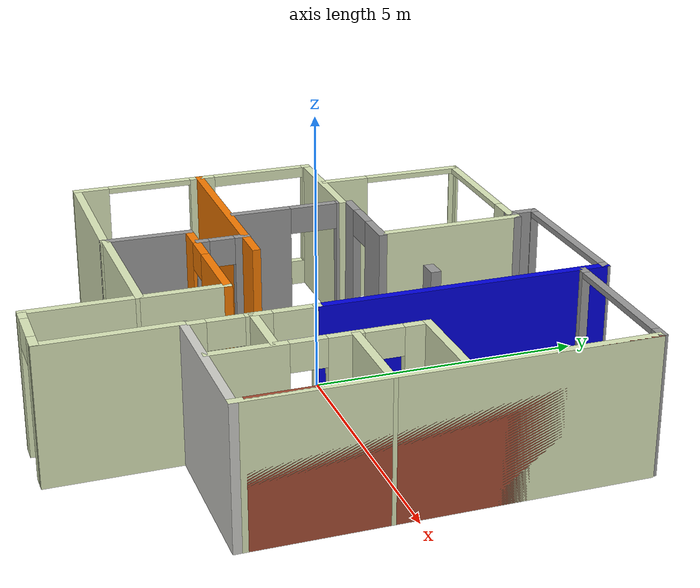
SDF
<?xml version='1.0'?>
<sdf version='1.6'>
  <model name='condo-2'>
    <pose frame=''>0.104993 -0.346507 0 0 -0 0</pose>
    <link name='Wall_1'>
      <collision name='Wall_1_Collision'>
        <geometry>
          <box>
            <size>6.75 0.15 2.5</size>
          </box>
        </geometry>
        <pose frame=''>0 0 1.25 0 -0 0</pose>
      </collision>
      <visual name='Wall_1_Visual'>
        <pose frame=''>0 0 1.25 0 -0 0</pose>
        <geometry>
          <box>
            <size>6.75 0.15 2.5</size>
          </box>
        </geometry>
        <material>
          <script>
            <uri>file://media/materials/scripts/gazebo.material</uri>
            <name>Gazebo/Bricks</name>
          </script>
          <ambient>1 1 1 1</ambient>
        </material>
        <meta>
          <layer>0</layer>
        </meta>
      </visual>
      <pose frame=''>4.74151 1.02898 0 0 0 -1.5708</pose>
    </link>
    <link name='Wall_10'>
      <collision name='Wall_10_Collision'>
        <geometry>
          <box>
            <size>1.68411 0.15 2.5</size>
          </box>
        </geometry>
        <pose frame=''>0 0 1.25 0 -0 0</pose>
      </collision>
      <visual name='Wall_10_Visual'>
        <pose frame=''>0 0 1.25 0 -0 0</pose>
        <geometry>
          <box>
            <size>1.68411 0.15 2.5</size>
          </box>
        </geometry>
        <material>
          <script>
            <uri>file://media/materials/scripts/gazebo.material</uri>
            <name>Gazebo/Grey</name>
          </script>
          <ambient>1 1 1 1</ambient>
        </material>
        <meta>
          <layer>0</layer>
        </meta>
      </visual>
      <pose frame=''>-1.96752 -2.21739 0 0 0 -1.58289</pose>
    </link>
    <link name='Wall_11'>
      <collision name='Wall_11_Collision'>
        <geometry>
          <box>
            <size>2.91482 0.15 2.5</size>
          </box>
        </geometry>
        <pose frame=''>0 0 1.25 0 -0 0</pose>
      </collision>
      <visual name='Wall_11_Visual'>
        <pose frame=''>0 0 1.25 0 -0 0</pose>
        <geometry>
          <box>
            <size>2.91482 0.15 2.5</size>
          </box>
        </geometry>
        <material>
          <script>
            <uri>file://media/materials/scripts/gazebo.material</uri>
            <name>Gazebo/Grey</name>
          </script>
          <ambient>0.854902 0.901961 0.72549 1</ambient>
        </material>
        <meta>
          <layer>0</layer>
        </meta>
      </visual>
      <pose frame=''>-3.35881 -2.96461 0 0 -0 3.12724</pose>
    </link>
    <link name='Wall_12'>
      <pose frame=''>-4.74082 -0.637006 0 0 -0 1.5708</pose>
      <visual name='Wall_12_Visual_0'>
        <pose frame=''>-2.04278 0 1.25 0 -0 0</pose>
        <geometry>
          <box>
            <size>0.679963 0.15 2.5</size>
          </box>
        </geometry>
        <material>
          <script>
            <uri>file://media/materials/scripts/gazebo.material</uri>
            <name>Gazebo/Grey</name>
          </script>
          <ambient>0.854902 0.901961 0.72549 1</ambient>
        </material>
        <meta>
          <layer>0</layer>
        </meta>
      </visual>
      <collision name='Wall_12_Collision_0'>
        <geometry>
          <box>
            <size>0.679963 0.15 2.5</size>
          </box>
        </geometry>
        <pose frame=''>-2.04278 0 1.25 0 -0 0</pose>
      </collision>
      <visual name='Wall_12_Visual_1'>
        <pose frame=''>-0.651319 0 0.5 0 -0 0</pose>
        <geometry>
          <box>
            <size>2.10296 0.15 1</size>
          </box>
        </geometry>
        <material>
          <script>
            <uri>file://media/materials/scripts/gazebo.material</uri>
            <name>Gazebo/Grey</name>
          </script>
          <ambient>0.854902 0.901961 0.72549 1</ambient>
        </material>
        <meta>
          <layer>0</layer>
        </meta>
      </visual>
      <collision name='Wall_12_Collision_1'>
        <geometry>
          <box>
            <size>2.10296 0.15 1</size>
          </box>
        </geometry>
        <pose frame=''>-0.651319 0 0.5 0 -0 0</pose>
      </collision>
      <visual name='Wall_12_Visual_2'>
        <pose frame=''>1.39146 0 0.25 0 -0 0</pose>
        <geometry>
          <box>
            <size>1.9826 0.15 0.5</size>
          </box>
        </geometry>
        <material>
          <script>
            <uri>file://media/materials/scripts/gazebo.material</uri>
            <name>Gazebo/Grey</name>
          </script>
          <ambient>0.854902 0.901961 0.72549 1</ambient>
        </material>
        <meta>
          <layer>0</layer>
        </meta>
      </visual>
      <collision name='Wall_12_Collision_2'>
        <geometry>
          <box>
            <size>1.9826 0.15 0.5</size>
          </box>
        </geometry>
        <pose frame=''>1.39146 0 0.25 0 -0 0</pose>
      </collision>
      <visual name='Wall_12_Visual_3'>
        <pose frame=''>2.29396 0 1.5 0 -0 0</pose>
        <geometry>
          <box>
            <size>0.1776 0.15 2</size>
          </box>
        </geometry>
        <material>
          <script>
            <uri>file://media/materials/scripts/gazebo.material</uri>
            <name>Gazebo/Grey</name>
          </script>
          <ambient>0.854902 0.901961 0.72549 1</ambient>
        </material>
        <meta>
          <layer>0</layer>
        </meta>
      </visual>
      <collision name='Wall_12_Collision_3'>
        <geometry>
          <box>
            <size>0.1776 0.15 2</size>
          </box>
        </geometry>
        <pose frame=''>2.29396 0 1.5 0 -0 0</pose>
      </collision>
      <visual name='Wall_12_Visual_4'>
        <pose frame=''>0.152181 0 1.75 0 -0 0</pose>
        <geometry>
          <box>
            <size>0.495963 0.15 1.5</size>
          </box>
        </geometry>
        <material>
          <script>
            <uri>file://media/materials/scripts/gazebo.material</uri>
            <name>Gazebo/Grey</name>
          </script>
          <ambient>0.854902 0.901961 0.72549 1</ambient>
        </material>
        <meta>
          <layer>0</layer>
        </meta>
      </visual>
      <collision name='Wall_12_Collision_4'>
        <geometry>
          <box>
            <size>0.495963 0.15 1.5</size>
          </box>
        </geometry>
        <pose frame=''>0.152181 0 1.75 0 -0 0</pose>
      </collision>
      <visual name='Wall_12_Visual_5'>
        <pose frame=''>1.30266 0 2.4 0 -0 0</pose>
        <geometry>
          <box>
            <size>1.805 0.15 0.2</size>
          </box>
        </geometry>
        <material>
          <script>
            <uri>file://media/materials/scripts/gazebo.material</uri>
            <name>Gazebo/Grey</name>
          </script>
          <ambient>0.854902 0.901961 0.72549 1</ambient>
        </material>
        <meta>
          <layer>0</layer>
        </meta>
      </visual>
      <collision name='Wall_12_Collision_5'>
        <geometry>
          <box>
            <size>1.805 0.15 0.2</size>
          </box>
        </geometry>
        <pose frame=''>1.30266 0 2.4 0 -0 0</pose>
      </collision>
      <visual name='Wall_12_Visual_6'>
        <pose frame=''>-0.8993 0 2.45 0 -0 0</pose>
        <geometry>
          <box>
            <size>1.607 0.15 0.1</size>
          </box>
        </geometry>
        <material>
          <script>
            <uri>file://media/materials/scripts/gazebo.material</uri>
            <name>Gazebo/Grey</name>
          </script>
          <ambient>0.854902 0.901961 0.72549 1</ambient>
        </material>
        <meta>
          <layer>0</layer>
        </meta>
      </visual>
      <collision name='Wall_12_Collision_6'>
        <geometry>
          <box>
            <size>1.607 0.15 0.1</size>
          </box>
        </geometry>
        <pose frame=''>-0.8993 0 2.45 0 -0 0</pose>
      </collision>
    </link>
    <link name='Wall_13'>
      <collision name='Wall_13_Collision'>
        <geometry>
          <box>
            <size>2.34535 0.15 2.5</size>
          </box>
        </geometry>
        <pose frame=''>0 0 1.25 0 -0 0</pose>
      </collision>
      <visual name='Wall_13_Visual'>
        <pose frame=''>0 0 1.25 0 -0 0</pose>
        <geometry>
          <box>
            <size>2.34535 0.15 2.5</size>
          </box>
        </geometry>
        <material>
          <script>
            <uri>file://media/materials/scripts/gazebo.material</uri>
            <name>Gazebo/Grey</name>
          </script>
          <ambient>0.854902 0.901961 0.72549 1</ambient>
        </material>
        <meta>
          <layer>0</layer>
        </meta>
      </visual>
      <pose frame=''>-3.64314 1.67076 0 0 -0 0</pose>
    </link>
    <link name='Wall_15'>
      <collision name='Wall_15_Collision'>
        <geometry>
          <box>
            <size>2.75533 0.15 2.5</size>
          </box>
        </geometry>
        <pose frame=''>0 0 1.25 0 -0 0</pose>
      </collision>
      <visual name='Wall_15_Visual'>
        <pose frame=''>0 0 1.25 0 -0 0</pose>
        <geometry>
          <box>
            <size>2.75533 0.15 2.5</size>
          </box>
        </geometry>
        <material>
          <script>
            <uri>file://media/materials/scripts/gazebo.material</uri>
            <name>Gazebo/Grey</name>
          </script>
          <ambient>0.854902 0.901961 0.72549 1</ambient>
        </material>
        <meta>
          <layer>0</layer>
        </meta>
      </visual>
      <pose frame=''>-0.660906 -2.95138 0 0 0 -3.13652</pose>
    </link>
    <link name='Wall_17'>
      <collision name='Wall_17_Collision'>
        <geometry>
          <box>
            <size>4.10436 0.15 2.5</size>
          </box>
        </geometry>
        <pose frame=''>0 0 1.25 0 -0 0</pose>
      </collision>
      <visual name='Wall_17_Visual'>
        <pose frame=''>0 0 1.25 0 -0 0</pose>
        <geometry>
          <box>
            <size>4.10436 0.15 2.5</size>
          </box>
        </geometry>
        <material>
          <script>
            <uri>file://media/materials/scripts/gazebo.material</uri>
            <name>Gazebo/Grey</name>
          </script>
          <ambient>0.960784 0.478431 0 1</ambient>
        </material>
        <meta>
          <layer>0</layer>
        </meta>
      </visual>
      <pose frame=''>-2.75046 -0.537818 0 0 0 -0.006689</pose>
    </link>
    <link name='Wall_20'>
      <pose frame=''>-3.70266 3.08583 0 0 -0 1.56589</pose>
      <visual name='Wall_20_Visual_0'>
        <pose frame=''>-0.964016 0 1.25 0 -0 0</pose>
        <geometry>
          <box>
            <size>0.9199 0.15 2.5</size>
          </box>
        </geometry>
        <material>
          <script>
            <uri>file://media/materials/scripts/gazebo.material</uri>
            <name>Gazebo/Grey</name>
          </script>
          <ambient>0.854902 0.901961 0.72549 1</ambient>
        </material>
        <meta>
          <layer>0</layer>
        </meta>
      </visual>
      <collision name='Wall_20_Collision_0'>
        <geometry>
          <box>
            <size>0.9199 0.15 2.5</size>
          </box>
        </geometry>
        <pose frame=''>-0.964016 0 1.25 0 -0 0</pose>
      </collision>
      <visual name='Wall_20_Visual_1'>
        <pose frame=''>0.45995 0 0.5 0 -0 0</pose>
        <geometry>
          <box>
            <size>1.92803 0.15 1</size>
          </box>
        </geometry>
        <material>
          <script>
            <uri>file://media/materials/scripts/gazebo.material</uri>
            <name>Gazebo/Grey</name>
          </script>
          <ambient>0.854902 0.901961 0.72549 1</ambient>
        </material>
        <meta>
          <layer>0</layer>
        </meta>
      </visual>
      <collision name='Wall_20_Collision_1'>
        <geometry>
          <box>
            <size>1.92803 0.15 1</size>
          </box>
        </geometry>
        <pose frame=''>0.45995 0 0.5 0 -0 0</pose>
      </collision>
      <visual name='Wall_20_Visual_2'>
        <pose frame=''>1.39995 0 1.75 0 -0 0</pose>
        <geometry>
          <box>
            <size>0.048033 0.15 1.5</size>
          </box>
        </geometry>
        <material>
          <script>
            <uri>file://media/materials/scripts/gazebo.material</uri>
            <name>Gazebo/Grey</name>
          </script>
          <ambient>0.854902 0.901961 0.72549 1</ambient>
        </material>
        <meta>
          <layer>0</layer>
        </meta>
      </visual>
      <collision name='Wall_20_Collision_2'>
        <geometry>
          <box>
            <size>0.048033 0.15 1.5</size>
          </box>
        </geometry>
        <pose frame=''>1.39995 0 1.75 0 -0 0</pose>
      </collision>
      <visual name='Wall_20_Visual_3'>
        <pose frame=''>0.435934 0 2.45 0 -0 0</pose>
        <geometry>
          <box>
            <size>1.88 0.15 0.1</size>
          </box>
        </geometry>
        <material>
          <script>
            <uri>file://media/materials/scripts/gazebo.material</uri>
            <name>Gazebo/Grey</name>
          </script>
          <ambient>0.854902 0.901961 0.72549 1</ambient>
        </material>
        <meta>
          <layer>0</layer>
        </meta>
      </visual>
      <collision name='Wall_20_Collision_3'>
        <geometry>
          <box>
            <size>1.88 0.15 0.1</size>
          </box>
        </geometry>
        <pose frame=''>0.435934 0 2.45 0 -0 0</pose>
      </collision>
    </link>
    <link name='Wall_21'>
      <pose frame=''>-2.31403 4.41494 0 0 0 -0.014353</pose>
      <visual name='Wall_21_Visual_0'>
        <pose frame=''>-1.44711 0 1.25 0 -0 0</pose>
        <geometry>
          <box>
            <size>0.020096 0.15 2.5</size>
          </box>
        </geometry>
        <material>
          <script>
            <uri>file://media/materials/scripts/gazebo.material</uri>
            <name>Gazebo/Grey</name>
          </script>
          <ambient>0.854902 0.901961 0.72549 1</ambient>
        </material>
        <meta>
          <layer>0</layer>
        </meta>
      </visual>
      <collision name='Wall_21_Collision_0'>
        <geometry>
          <box>
            <size>0.020096 0.15 2.5</size>
          </box>
        </geometry>
        <pose frame=''>-1.44711 0 1.25 0 -0 0</pose>
      </collision>
      <visual name='Wall_21_Visual_1'>
        <pose frame=''>0.010048 0 0.5 0 -0 0</pose>
        <geometry>
          <box>
            <size>2.89421 0.15 1</size>
          </box>
        </geometry>
        <material>
          <script>
            <uri>file://media/materials/scripts/gazebo.material</uri>
            <name>Gazebo/Grey</name>
          </script>
          <ambient>0.854902 0.901961 0.72549 1</ambient>
        </material>
        <meta>
          <layer>0</layer>
        </meta>
      </visual>
      <collision name='Wall_21_Collision_1'>
        <geometry>
          <box>
            <size>2.89421 0.15 1</size>
          </box>
        </geometry>
        <pose frame=''>0.010048 0 0.5 0 -0 0</pose>
      </collision>
      <visual name='Wall_21_Visual_2'>
        <pose frame=''>1.15505 0 1.75 0 -0 0</pose>
        <geometry>
          <box>
            <size>0.604214 0.15 1.5</size>
          </box>
        </geometry>
        <material>
          <script>
            <uri>file://media/materials/scripts/gazebo.material</uri>
            <name>Gazebo/Grey</name>
          </script>
          <ambient>0.854902 0.901961 0.72549 1</ambient>
        </material>
        <meta>
          <layer>0</layer>
        </meta>
      </visual>
      <collision name='Wall_21_Collision_2'>
        <geometry>
          <box>
            <size>0.604214 0.15 1.5</size>
          </box>
        </geometry>
        <pose frame=''>1.15505 0 1.75 0 -0 0</pose>
      </collision>
      <visual name='Wall_21_Visual_3'>
        <pose frame=''>-0.292059 0 2.45 0 -0 0</pose>
        <geometry>
          <box>
            <size>2.29 0.15 0.1</size>
          </box>
        </geometry>
        <material>
          <script>
            <uri>file://media/materials/scripts/gazebo.material</uri>
            <name>Gazebo/Grey</name>
          </script>
          <ambient>0.854902 0.901961 0.72549 1</ambient>
        </material>
        <meta>
          <layer>0</layer>
        </meta>
      </visual>
      <collision name='Wall_21_Collision_3'>
        <geometry>
          <box>
            <size>2.29 0.15 0.1</size>
          </box>
        </geometry>
        <pose frame=''>-0.292059 0 2.45 0 -0 0</pose>
      </collision>
    </link>
    <link name='Wall_22'>
      <collision name='Wall_22_Collision'>
        <geometry>
          <box>
            <size>0.6261 0.15 2.5</size>
          </box>
        </geometry>
        <pose frame=''>0 0 1.25 0 -0 0</pose>
      </collision>
      <visual name='Wall_22_Visual'>
        <pose frame=''>0 0 1.25 0 -0 0</pose>
        <geometry>
          <box>
            <size>0.6261 0.15 2.5</size>
          </box>
        </geometry>
        <material>
          <script>
            <uri>file://media/materials/scripts/gazebo.material</uri>
            <name>Gazebo/Grey</name>
          </script>
          <ambient>1 1 1 1</ambient>
        </material>
        <meta>
          <layer>0</layer>
        </meta>
      </visual>
      <pose frame=''>-0.932018 4.63316 0 0 -0 1.5708</pose>
    </link>
    <link name='Wall_23'>
      <pose frame=''>0.492994 4.87136 0 0 -0 0.000105</pose>
      <visual name='Wall_23_Visual_0'>
        <pose frame=''>-1.41577 0 1.25 0 -0 0</pose>
        <geometry>
          <box>
            <size>0.168462 0.15 2.5</size>
          </box>
        </geometry>
        <material>
          <script>
            <uri>file://media/materials/scripts/gazebo.material</uri>
            <name>Gazebo/Grey</name>
          </script>
          <ambient>1 1 1 1</ambient>
        </material>
        <meta>
          <layer>0</layer>
        </meta>
      </visual>
      <collision name='Wall_23_Collision_0'>
        <geometry>
          <box>
            <size>0.168462 0.15 2.5</size>
          </box>
        </geometry>
        <pose frame=''>-1.41577 0 1.25 0 -0 0</pose>
      </collision>
      <visual name='Wall_23_Visual_1'>
        <pose frame=''>0.084231 0 0.5 0 -0 0</pose>
        <geometry>
          <box>
            <size>2.83154 0.15 1</size>
          </box>
        </geometry>
        <material>
          <script>
            <uri>file://media/materials/scripts/gazebo.material</uri>
            <name>Gazebo/Grey</name>
          </script>
          <ambient>1 1 1 1</ambient>
        </material>
        <meta>
          <layer>0</layer>
        </meta>
      </visual>
      <collision name='Wall_23_Collision_1'>
        <geometry>
          <box>
            <size>2.83154 0.15 1</size>
          </box>
        </geometry>
        <pose frame=''>0.084231 0 0.5 0 -0 0</pose>
      </collision>
      <visual name='Wall_23_Visual_2'>
        <pose frame=''>1.39923 0 1.75 0 -0 0</pose>
        <geometry>
          <box>
            <size>0.201538 0.15 1.5</size>
          </box>
        </geometry>
        <material>
          <script>
            <uri>file://media/materials/scripts/gazebo.material</uri>
            <name>Gazebo/Grey</name>
          </script>
          <ambient>1 1 1 1</ambient>
        </material>
        <meta>
          <layer>0</layer>
        </meta>
      </visual>
      <collision name='Wall_23_Collision_2'>
        <geometry>
          <box>
            <size>0.201538 0.15 1.5</size>
          </box>
        </geometry>
        <pose frame=''>1.39923 0 1.75 0 -0 0</pose>
      </collision>
      <visual name='Wall_23_Visual_3'>
        <pose frame=''>-0.016538 0 2.45 0 -0 0</pose>
        <geometry>
          <box>
            <size>2.63 0.15 0.1</size>
          </box>
        </geometry>
        <material>
          <script>
            <uri>file://media/materials/scripts/gazebo.material</uri>
            <name>Gazebo/Grey</name>
          </script>
          <ambient>1 1 1 1</ambient>
        </material>
        <meta>
          <layer>0</layer>
        </meta>
      </visual>
      <collision name='Wall_23_Collision_3'>
        <geometry>
          <box>
            <size>2.63 0.15 0.1</size>
          </box>
        </geometry>
        <pose frame=''>-0.016538 0 2.45 0 -0 0</pose>
      </collision>
    </link>
    <link name='Wall_24'>
      <collision name='Wall_24_Collision'>
        <geometry>
          <box>
            <size>5.25485 0.15 2.5</size>
          </box>
        </geometry>
        <pose frame=''>0 0 1.25 0 -0 0</pose>
      </collision>
      <visual name='Wall_24_Visual'>
        <pose frame=''>0 0 1.25 0 -0 0</pose>
        <geometry>
          <box>
            <size>5.25485 0.15 2.5</size>
          </box>
        </geometry>
        <material>
          <script>
            <uri>file://media/materials/scripts/gazebo.material</uri>
            <name>Gazebo/Grey</name>
          </script>
          <ambient>0 0 0.866667 1</ambient>
        </material>
        <meta>
          <layer>0</layer>
        </meta>
      </visual>
      <pose frame=''>1.92151 2.31901 0 0 0 -1.56943</pose>
    </link>
    <link name='Wall_28'>
      <pose frame=''>1.92458 -1.35359 0 0 0 -1.5708</pose>
      <visual name='Wall_28_Visual_0'>
        <pose frame=''>-1.04991 0 1.25 0 -0 0</pose>
        <geometry>
          <box>
            <size>0.150175 0.15 2.5</size>
          </box>
        </geometry>
        <material>
          <script>
            <uri>file://media/materials/scripts/gazebo.material</uri>
            <name>Gazebo/Grey</name>
          </script>
          <ambient>0.854902 0.901961 0.72549 1</ambient>
        </material>
        <meta>
          <layer>0</layer>
        </meta>
      </visual>
      <collision name='Wall_28_Collision_0'>
        <geometry>
          <box>
            <size>0.150175 0.15 2.5</size>
          </box>
        </geometry>
        <pose frame=''>-1.04991 0 1.25 0 -0 0</pose>
      </collision>
      <visual name='Wall_28_Visual_1'>
        <pose frame=''>-0.055337 0 1.25 0 -0 0</pose>
        <geometry>
          <box>
            <size>0.462175 0.15 2.5</size>
          </box>
        </geometry>
        <material>
          <script>
            <uri>file://media/materials/scripts/gazebo.material</uri>
            <name>Gazebo/Grey</name>
          </script>
          <ambient>0.854902 0.901961 0.72549 1</ambient>
        </material>
        <meta>
          <layer>0</layer>
        </meta>
      </visual>
      <collision name='Wall_28_Collision_1'>
        <geometry>
          <box>
            <size>0.462175 0.15 2.5</size>
          </box>
        </geometry>
        <pose frame=''>-0.055337 0 1.25 0 -0 0</pose>
      </collision>
      <visual name='Wall_28_Visual_2'>
        <pose frame=''>0.968125 0 1.25 0 -0 0</pose>
        <geometry>
          <box>
            <size>0.31375 0.15 2.5</size>
          </box>
        </geometry>
        <material>
          <script>
            <uri>file://media/materials/scripts/gazebo.material</uri>
            <name>Gazebo/Grey</name>
          </script>
          <ambient>0.854902 0.901961 0.72549 1</ambient>
        </material>
        <meta>
          <layer>0</layer>
        </meta>
      </visual>
      <collision name='Wall_28_Collision_2'>
        <geometry>
          <box>
            <size>0.31375 0.15 2.5</size>
          </box>
        </geometry>
        <pose frame=''>0.968125 0 1.25 0 -0 0</pose>
      </collision>
      <visual name='Wall_28_Visual_3'>
        <pose frame=''>-0.630625 0 2.25 0 -0 0</pose>
        <geometry>
          <box>
            <size>0.6884 0.15 0.5</size>
          </box>
        </geometry>
        <material>
          <script>
            <uri>file://media/materials/scripts/gazebo.material</uri>
            <name>Gazebo/Grey</name>
          </script>
          <ambient>0.854902 0.901961 0.72549 1</ambient>
        </material>
        <meta>
          <layer>0</layer>
        </meta>
      </visual>
      <collision name='Wall_28_Collision_3'>
        <geometry>
          <box>
            <size>0.6884 0.15 0.5</size>
          </box>
        </geometry>
        <pose frame=''>-0.630625 0 2.25 0 -0 0</pose>
      </collision>
      <visual name='Wall_28_Visual_4'>
        <pose frame=''>0.4935 0 2.25 0 -0 0</pose>
        <geometry>
          <box>
            <size>0.6355 0.15 0.5</size>
          </box>
        </geometry>
        <material>
          <script>
            <uri>file://media/materials/scripts/gazebo.material</uri>
            <name>Gazebo/Grey</name>
          </script>
          <ambient>0.854902 0.901961 0.72549 1</ambient>
        </material>
        <meta>
          <layer>0</layer>
        </meta>
      </visual>
      <collision name='Wall_28_Collision_4'>
        <geometry>
          <box>
            <size>0.6355 0.15 0.5</size>
          </box>
        </geometry>
        <pose frame=''>0.4935 0 2.25 0 -0 0</pose>
      </collision>
    </link>
    <link name='Wall_3'>
      <collision name='Wall_3_Collision'>
        <geometry>
          <box>
            <size>7 0.15 2.5</size>
          </box>
        </geometry>
        <pose frame=''>0 0 1.25 0 -0 0</pose>
      </collision>
      <visual name='Wall_3_Visual'>
        <pose frame=''>0 0 1.25 0 -0 0</pose>
        <geometry>
          <box>
            <size>7 0.15 2.5</size>
          </box>
        </geometry>
        <material>
          <script>
            <uri>file://media/materials/scripts/gazebo.material</uri>
            <name>Gazebo/Grey</name>
          </script>
          <ambient>0.854902 0.901961 0.72549 1</ambient>
        </material>
        <meta>
          <layer>0</layer>
        </meta>
      </visual>
      <pose frame=''>4.74151 0.903982 0 0 0 -1.5708</pose>
    </link>
    <link name='Wall_31'>
      <pose frame=''>3.34627 4.41494 0 0 0 -0.014492</pose>
      <visual name='Wall_31_Visual_0'>
        <pose frame=''>-1.34195 0 1.25 0 -0 0</pose>
        <geometry>
          <box>
            <size>0.203956 0.15 2.5</size>
          </box>
        </geometry>
        <material>
          <script>
            <uri>file://media/materials/scripts/gazebo.material</uri>
            <name>Gazebo/Grey</name>
          </script>
          <ambient>1 1 1 1</ambient>
        </material>
        <meta>
          <layer>0</layer>
        </meta>
      </visual>
      <collision name='Wall_31_Collision_0'>
        <geometry>
          <box>
            <size>0.203956 0.15 2.5</size>
          </box>
        </geometry>
        <pose frame=''>-1.34195 0 1.25 0 -0 0</pose>
      </collision>
      <visual name='Wall_31_Visual_1'>
        <pose frame=''>0.101978 0 0.5 0 -0 0</pose>
        <geometry>
          <box>
            <size>2.68391 0.15 1</size>
          </box>
        </geometry>
        <material>
          <script>
            <uri>file://media/materials/scripts/gazebo.material</uri>
            <name>Gazebo/Grey</name>
          </script>
          <ambient>1 1 1 1</ambient>
        </material>
        <meta>
          <layer>0</layer>
        </meta>
      </visual>
      <collision name='Wall_31_Collision_1'>
        <geometry>
          <box>
            <size>2.68391 0.15 1</size>
          </box>
        </geometry>
        <pose frame=''>0.101978 0 0.5 0 -0 0</pose>
      </collision>
      <visual name='Wall_31_Visual_2'>
        <pose frame=''>1.30698 0 1.75 0 -0 0</pose>
        <geometry>
          <box>
            <size>0.273907 0.15 1.5</size>
          </box>
        </geometry>
        <material>
          <script>
            <uri>file://media/materials/scripts/gazebo.material</uri>
            <name>Gazebo/Grey</name>
          </script>
          <ambient>1 1 1 1</ambient>
        </material>
        <meta>
          <layer>0</layer>
        </meta>
      </visual>
      <collision name='Wall_31_Collision_2'>
        <geometry>
          <box>
            <size>0.273907 0.15 1.5</size>
          </box>
        </geometry>
        <pose frame=''>1.30698 0 1.75 0 -0 0</pose>
      </collision>
      <visual name='Wall_31_Visual_3'>
        <pose frame=''>-0.034975 0 2.45 0 -0 0</pose>
        <geometry>
          <box>
            <size>2.41 0.15 0.1</size>
          </box>
        </geometry>
        <material>
          <script>
            <uri>file://media/materials/scripts/gazebo.material</uri>
            <name>Gazebo/Grey</name>
          </script>
          <ambient>1 1 1 1</ambient>
        </material>
        <meta>
          <layer>0</layer>
        </meta>
      </visual>
      <collision name='Wall_31_Collision_3'>
        <geometry>
          <box>
            <size>2.41 0.15 0.1</size>
          </box>
        </geometry>
        <pose frame=''>-0.034975 0 2.45 0 -0 0</pose>
      </collision>
    </link>
    <link name='Wall_33'>
      <collision name='Wall_33_Collision'>
        <geometry>
          <box>
            <size>1.25 0.15 2.5</size>
          </box>
        </geometry>
        <pose frame=''>0 0 1.25 0 -0 0</pose>
      </collision>
      <visual name='Wall_33_Visual'>
        <pose frame=''>0 0 1.25 0 -0 0</pose>
        <geometry>
          <box>
            <size>1.25 0.15 2.5</size>
          </box>
        </geometry>
        <material>
          <script>
            <uri>file://media/materials/scripts/gazebo.material</uri>
            <name>Gazebo/Grey</name>
          </script>
          <ambient>0.854902 0.901961 0.72549 1</ambient>
        </material>
        <meta>
          <layer>0</layer>
        </meta>
      </visual>
      <pose frame=''>2.51426 -1.38422 0 0 -0 0</pose>
    </link>
    <link name='Wall_4'>
      <collision name='Wall_4_Collision'>
        <geometry>
          <box>
            <size>3 0.15 2.5</size>
          </box>
        </geometry>
        <pose frame=''>0 0 1.25 0 -0 0</pose>
      </collision>
      <visual name='Wall_4_Visual'>
        <pose frame=''>0 0 1.25 0 -0 0</pose>
        <geometry>
          <box>
            <size>3 0.15 2.5</size>
          </box>
        </geometry>
        <material>
          <script>
            <uri>file://media/materials/scripts/gazebo.material</uri>
            <name>Gazebo/CeilingTiled</name>
          </script>
          <ambient>1 1 1 1</ambient>
        </material>
        <meta>
          <layer>0</layer>
        </meta>
      </visual>
      <pose frame=''>3.31651 -2.52102 0 0 -0 3.14159</pose>
    </link>
    <link name='Wall_43'>
      <pose frame=''>3.11483 -0.655443 0 0 -0 1.5708</pose>
      <visual name='Wall_43_Visual_0'>
        <pose frame=''>-1.19296 0 1.25 0 -0 0</pose>
        <geometry>
          <box>
            <size>1.36409 0.15 2.5</size>
          </box>
        </geometry>
        <material>
          <script>
            <uri>file://media/materials/scripts/gazebo.material</uri>
            <name>Gazebo/Grey</name>
          </script>
          <ambient>0.854902 0.901961 0.72549 1</ambient>
        </material>
        <meta>
          <layer>0</layer>
        </meta>
      </visual>
      <collision name='Wall_43_Collision_0'>
        <geometry>
          <box>
            <size>1.36409 0.15 2.5</size>
          </box>
        </geometry>
        <pose frame=''>-1.19296 0 1.25 0 -0 0</pose>
      </collision>
      <visual name='Wall_43_Visual_1'>
        <pose frame=''>0.415188 0 1.25 0 -0 0</pose>
        <geometry>
          <box>
            <size>0.60765 0.15 2.5</size>
          </box>
        </geometry>
        <material>
          <script>
            <uri>file://media/materials/scripts/gazebo.material</uri>
            <name>Gazebo/Grey</name>
          </script>
          <ambient>0.854902 0.901961 0.72549 1</ambient>
        </material>
        <meta>
          <layer>0</layer>
        </meta>
      </visual>
      <collision name='Wall_43_Collision_1'>
        <geometry>
          <box>
            <size>0.60765 0.15 2.5</size>
          </box>
        </geometry>
        <pose frame=''>0.415188 0 1.25 0 -0 0</pose>
      </collision>
      <visual name='Wall_43_Visual_2'>
        <pose frame=''>1.62798 0 1.25 0 -0 0</pose>
        <geometry>
          <box>
            <size>0.494037 0.15 2.5</size>
          </box>
        </geometry>
        <material>
          <script>
            <uri>file://media/materials/scripts/gazebo.material</uri>
            <name>Gazebo/Grey</name>
          </script>
          <ambient>0.854902 0.901961 0.72549 1</ambient>
        </material>
        <meta>
          <layer>0</layer>
        </meta>
      </visual>
      <collision name='Wall_43_Collision_2'>
        <geometry>
          <box>
            <size>0.494037 0.15 2.5</size>
          </box>
        </geometry>
        <pose frame=''>1.62798 0 1.25 0 -0 0</pose>
      </collision>
      <visual name='Wall_43_Visual_3'>
        <pose frame=''>-0.199775 0 2.25 0 -0 0</pose>
        <geometry>
          <box>
            <size>0.622275 0.15 0.5</size>
          </box>
        </geometry>
        <material>
          <script>
            <uri>file://media/materials/scripts/gazebo.material</uri>
            <name>Gazebo/Grey</name>
          </script>
          <ambient>0.854902 0.901961 0.72549 1</ambient>
        </material>
        <meta>
          <layer>0</layer>
        </meta>
      </visual>
      <collision name='Wall_43_Collision_3'>
        <geometry>
          <box>
            <size>0.622275 0.15 0.5</size>
          </box>
        </geometry>
        <pose frame=''>-0.199775 0 2.25 0 -0 0</pose>
      </collision>
      <visual name='Wall_43_Visual_4'>
        <pose frame=''>1.04999 0 2.25 0 -0 0</pose>
        <geometry>
          <box>
            <size>0.66195 0.15 0.5</size>
          </box>
        </geometry>
        <material>
          <script>
            <uri>file://media/materials/scripts/gazebo.material</uri>
            <name>Gazebo/Grey</name>
          </script>
          <ambient>0.854902 0.901961 0.72549 1</ambient>
        </material>
        <meta>
          <layer>0</layer>
        </meta>
      </visual>
      <collision name='Wall_43_Collision_4'>
        <geometry>
          <box>
            <size>0.66195 0.15 0.5</size>
          </box>
        </geometry>
        <pose frame=''>1.04999 0 2.25 0 -0 0</pose>
      </collision>
    </link>
    <link name='Wall_44'>
      <collision name='Wall_44_Collision'>
        <geometry>
          <box>
            <size>1.75 0.15 2.5</size>
          </box>
        </geometry>
        <pose frame=''>0 0 1.25 0 -0 0</pose>
      </collision>
      <visual name='Wall_44_Visual'>
        <pose frame=''>0 0 1.25 0 -0 0</pose>
        <geometry>
          <box>
            <size>1.75 0.15 2.5</size>
          </box>
        </geometry>
        <material>
          <script>
            <uri>file://media/materials/scripts/gazebo.material</uri>
            <name>Gazebo/Grey</name>
          </script>
          <ambient>0.854902 0.901961 0.72549 1</ambient>
        </material>
        <meta>
          <layer>0</layer>
        </meta>
      </visual>
      <pose frame=''>3.91483 1.14456 0 0 -0 0</pose>
    </link>
    <link name='Wall_46'>
      <collision name='Wall_46_Collision'>
        <geometry>
          <box>
            <size>1.71061 0.15 2.5</size>
          </box>
        </geometry>
        <pose frame=''>0 0 1.25 0 -0 0</pose>
      </collision>
      <visual name='Wall_46_Visual'>
        <pose frame=''>0 0 1.25 0 -0 0</pose>
        <geometry>
          <box>
            <size>1.71061 0.15 2.5</size>
          </box>
        </geometry>
        <material>
          <script>
            <uri>file://media/materials/scripts/gazebo.material</uri>
            <name>Gazebo/Grey</name>
          </script>
          <ambient>0.854902 0.901961 0.72549 1</ambient>
        </material>
        <meta>
          <layer>0</layer>
        </meta>
      </visual>
      <pose frame=''>3.96123 -0.081556 0 0 0 -0.008474</pose>
    </link>
    <link name='Wall_48'>
      <pose frame=''>-1.43457 -0.962818 0 0 0 -1.5708</pose>
      <visual name='Wall_48_Visual_0'>
        <pose frame=''>-0.353569 0 1.25 0 -0 0</pose>
        <geometry>
          <box>
            <size>0.292862 0.15 2.5</size>
          </box>
        </geometry>
        <material>
          <script>
            <uri>file://media/materials/scripts/gazebo.material</uri>
            <name>Gazebo/Grey</name>
          </script>
          <ambient>1 1 1 1</ambient>
        </material>
        <meta>
          <layer>0</layer>
        </meta>
      </visual>
      <collision name='Wall_48_Collision_0'>
        <geometry>
          <box>
            <size>0.292862 0.15 2.5</size>
          </box>
        </geometry>
        <pose frame=''>-0.353569 0 1.25 0 -0 0</pose>
      </collision>
      <visual name='Wall_48_Visual_1'>
        <pose frame=''>0.378219 0 1.25 0 -0 0</pose>
        <geometry>
          <box>
            <size>0.243563 0.15 2.5</size>
          </box>
        </geometry>
        <material>
          <script>
            <uri>file://media/materials/scripts/gazebo.material</uri>
            <name>Gazebo/Grey</name>
          </script>
          <ambient>1 1 1 1</ambient>
        </material>
        <meta>
          <layer>0</layer>
        </meta>
      </visual>
      <collision name='Wall_48_Collision_1'>
        <geometry>
          <box>
            <size>0.243563 0.15 2.5</size>
          </box>
        </geometry>
        <pose frame=''>0.378219 0 1.25 0 -0 0</pose>
      </collision>
      <visual name='Wall_48_Visual_2'>
        <pose frame=''>0.02465 0 2.25 0 -0 0</pose>
        <geometry>
          <box>
            <size>0.463575 0.15 0.5</size>
          </box>
        </geometry>
        <material>
          <script>
            <uri>file://media/materials/scripts/gazebo.material</uri>
            <name>Gazebo/Grey</name>
          </script>
          <ambient>1 1 1 1</ambient>
        </material>
        <meta>
          <layer>0</layer>
        </meta>
      </visual>
      <collision name='Wall_48_Collision_2'>
        <geometry>
          <box>
            <size>0.463575 0.15 0.5</size>
          </box>
        </geometry>
        <pose frame=''>0.02465 0 2.25 0 -0 0</pose>
      </collision>
    </link>
    <link name='Wall_5'>
      <collision name='Wall_5_Collision'>
        <geometry>
          <box>
            <size>2.5 0.15 2.5</size>
          </box>
        </geometry>
        <pose frame=''>0 0 1.25 0 -0 0</pose>
      </collision>
      <visual name='Wall_5_Visual'>
        <pose frame=''>0 0 1.25 0 -0 0</pose>
        <geometry>
          <box>
            <size>2.5 0.15 2.5</size>
          </box>
        </geometry>
        <material>
          <script>
            <uri>file://media/materials/scripts/gazebo.material</uri>
            <name>Gazebo/Grey</name>
          </script>
          <ambient>0.854902 0.901961 0.72549 1</ambient>
        </material>
        <meta>
          <layer>0</layer>
        </meta>
      </visual>
      <pose frame=''>1.89812 -3.69602 0 0 0 -1.56517</pose>
    </link>
    <link name='Wall_50'>
      <pose frame=''>-2.54547 0.620757 0 0 0 -1.5708</pose>
      <visual name='Wall_50_Visual_0'>
        <pose frame=''>-1.02155 0 1.25 0 -0 0</pose>
        <geometry>
          <box>
            <size>0.2069 0.15 2.5</size>
          </box>
        </geometry>
        <material>
          <script>
            <uri>file://media/materials/scripts/gazebo.material</uri>
            <name>Gazebo/Grey</name>
          </script>
          <ambient>1 1 1 1</ambient>
        </material>
        <meta>
          <layer>0</layer>
        </meta>
      </visual>
      <collision name='Wall_50_Collision_0'>
        <geometry>
          <box>
            <size>0.2069 0.15 2.5</size>
          </box>
        </geometry>
        <pose frame=''>-1.02155 0 1.25 0 -0 0</pose>
      </collision>
      <visual name='Wall_50_Visual_1'>
        <pose frame=''>0.55345 0 1.25 0 -0 0</pose>
        <geometry>
          <box>
            <size>1.1431 0.15 2.5</size>
          </box>
        </geometry>
        <material>
          <script>
            <uri>file://media/materials/scripts/gazebo.material</uri>
            <name>Gazebo/Grey</name>
          </script>
          <ambient>1 1 1 1</ambient>
        </material>
        <meta>
          <layer>0</layer>
        </meta>
      </visual>
      <collision name='Wall_50_Collision_1'>
        <geometry>
          <box>
            <size>1.1431 0.15 2.5</size>
          </box>
        </geometry>
        <pose frame=''>0.55345 0 1.25 0 -0 0</pose>
      </collision>
      <visual name='Wall_50_Visual_2'>
        <pose frame=''>-0.4681 0 2.25 0 -0 0</pose>
        <geometry>
          <box>
            <size>0.9 0.15 0.5</size>
          </box>
        </geometry>
        <material>
          <script>
            <uri>file://media/materials/scripts/gazebo.material</uri>
            <name>Gazebo/Grey</name>
          </script>
          <ambient>1 1 1 1</ambient>
        </material>
        <meta>
          <layer>0</layer>
        </meta>
      </visual>
      <collision name='Wall_50_Collision_2'>
        <geometry>
          <box>
            <size>0.9 0.15 0.5</size>
          </box>
        </geometry>
        <pose frame=''>-0.4681 0 2.25 0 -0 0</pose>
      </collision>
    </link>
    <link name='Wall_53'>
      <collision name='Wall_53_Collision'>
        <geometry>
          <box>
            <size>2.795 0.15 2.5</size>
          </box>
        </geometry>
        <pose frame=''>0 0 1.25 0 -0 0</pose>
      </collision>
      <visual name='Wall_53_Visual'>
        <pose frame=''>0 0 1.25 0 -0 0</pose>
        <geometry>
          <box>
            <size>2.795 0.15 2.5</size>
          </box>
        </geometry>
        <material>
          <script>
            <uri>file://media/materials/scripts/gazebo.material</uri>
            <name>Gazebo/Grey</name>
          </script>
          <ambient>0.854902 0.901961 0.72549 1</ambient>
        </material>
        <meta>
          <layer>0</layer>
        </meta>
      </visual>
      <pose frame=''>-0.746868 3.12551 0 0 -0 1.5708</pose>
    </link>
    <link name='Wall_54'>
      <collision name='Wall_54_Collision'>
        <geometry>
          <box>
            <size>0.256623 0.15 2.5</size>
          </box>
        </geometry>
        <pose frame=''>0 0 1.25 0 -0 0</pose>
      </collision>
      <visual name='Wall_54_Visual'>
        <pose frame=''>0 0 1.25 0 -0 0</pose>
        <geometry>
          <box>
            <size>0.256623 0.15 2.5</size>
          </box>
        </geometry>
        <material>
          <script>
            <uri>file://media/materials/scripts/gazebo.material</uri>
            <name>Gazebo/Grey</name>
          </script>
          <ambient>1 1 1 1</ambient>
        </material>
        <meta>
          <layer>0</layer>
        </meta>
      </visual>
      <pose frame=''>-0.799768 4.44801 0 0 -0 3.14159</pose>
    </link>
    <link name='Wall_56'>
      <pose frame=''>-1.58666 1.78978 0 0 -0 3.14159</pose>
      <visual name='Wall_56_Visual_0'>
        <pose frame=''>-0.573337 0 1.25 0 -0 0</pose>
        <geometry>
          <box>
            <size>0.762449 0.15 2.5</size>
          </box>
        </geometry>
        <material>
          <script>
            <uri>file://media/materials/scripts/gazebo.material</uri>
            <name>Gazebo/Grey</name>
          </script>
          <ambient>1 1 1 1</ambient>
        </material>
        <meta>
          <layer>0</layer>
        </meta>
      </visual>
      <collision name='Wall_56_Collision_0'>
        <geometry>
          <box>
            <size>0.762449 0.15 2.5</size>
          </box>
        </geometry>
        <pose frame=''>-0.573337 0 1.25 0 -0 0</pose>
      </collision>
      <visual name='Wall_56_Visual_1'>
        <pose frame=''>0.698975 0 1.25 0 -0 0</pose>
        <geometry>
          <box>
            <size>0.511174 0.15 2.5</size>
          </box>
        </geometry>
        <material>
          <script>
            <uri>file://media/materials/scripts/gazebo.material</uri>
            <name>Gazebo/Grey</name>
          </script>
          <ambient>1 1 1 1</ambient>
        </material>
        <meta>
          <layer>0</layer>
        </meta>
      </visual>
      <collision name='Wall_56_Collision_1'>
        <geometry>
          <box>
            <size>0.511174 0.15 2.5</size>
          </box>
        </geometry>
        <pose frame=''>0.698975 0 1.25 0 -0 0</pose>
      </collision>
      <visual name='Wall_56_Visual_2'>
        <pose frame=''>0.125638 0 2.25 0 -0 0</pose>
        <geometry>
          <box>
            <size>0.6355 0.15 0.5</size>
          </box>
        </geometry>
        <material>
          <script>
            <uri>file://media/materials/scripts/gazebo.material</uri>
            <name>Gazebo/Grey</name>
          </script>
          <ambient>1 1 1 1</ambient>
        </material>
        <meta>
          <layer>0</layer>
        </meta>
      </visual>
      <collision name='Wall_56_Collision_2'>
        <geometry>
          <box>
            <size>0.6355 0.15 0.5</size>
          </box>
        </geometry>
        <pose frame=''>0.125638 0 2.25 0 -0 0</pose>
      </collision>
    </link>
    <link name='Wall_6'>
      <pose frame=''>1.26663 -4.86671 0 0 -0 3.13469</pose>
      <visual name='Wall_6_Visual_0'>
        <pose frame=''>-0.520222 0 1.25 0 -0 0</pose>
        <geometry>
          <box>
            <size>0.359336 0.15 2.5</size>
          </box>
        </geometry>
        <material>
          <script>
            <uri>file://media/materials/scripts/gazebo.material</uri>
            <name>Gazebo/Grey</name>
          </script>
          <ambient>0.854902 0.901961 0.72549 1</ambient>
        </material>
        <meta>
          <layer>0</layer>
        </meta>
      </visual>
      <collision name='Wall_6_Collision_0'>
        <geometry>
          <box>
            <size>0.359336 0.15 2.5</size>
          </box>
        </geometry>
        <pose frame=''>-0.520222 0 1.25 0 -0 0</pose>
      </collision>
      <visual name='Wall_6_Visual_1'>
        <pose frame=''>0.53705 0 1.25 0 -0 0</pose>
        <geometry>
          <box>
            <size>0.32568 0.15 2.5</size>
          </box>
        </geometry>
        <material>
          <script>
            <uri>file://media/materials/scripts/gazebo.material</uri>
            <name>Gazebo/Grey</name>
          </script>
          <ambient>0.854902 0.901961 0.72549 1</ambient>
        </material>
        <meta>
          <layer>0</layer>
        </meta>
      </visual>
      <collision name='Wall_6_Collision_1'>
        <geometry>
          <box>
            <size>0.32568 0.15 2.5</size>
          </box>
        </geometry>
        <pose frame=''>0.53705 0 1.25 0 -0 0</pose>
      </collision>
      <visual name='Wall_6_Visual_2'>
        <pose frame=''>0.016828 0 2.25 0 -0 0</pose>
        <geometry>
          <box>
            <size>0.714763 0.15 0.5</size>
          </box>
        </geometry>
        <material>
          <script>
            <uri>file://media/materials/scripts/gazebo.material</uri>
            <name>Gazebo/Grey</name>
          </script>
          <ambient>0.854902 0.901961 0.72549 1</ambient>
        </material>
        <meta>
          <layer>0</layer>
        </meta>
      </visual>
      <collision name='Wall_6_Collision_2'>
        <geometry>
          <box>
            <size>0.714763 0.15 0.5</size>
          </box>
        </geometry>
        <pose frame=''>0.016828 0 2.25 0 -0 0</pose>
      </collision>
    </link>
    <link name='Wall_8'>
      <collision name='Wall_8_Collision'>
        <geometry>
          <box>
            <size>3.56205 0.15 2.5</size>
          </box>
        </geometry>
        <pose frame=''>0 0 1.25 0 -0 0</pose>
      </collision>
      <visual name='Wall_8_Visual'>
        <pose frame=''>0 0 1.25 0 -0 0</pose>
        <geometry>
          <box>
            <size>3.56205 0.15 2.5</size>
          </box>
        </geometry>
        <material>
          <script>
            <uri>file://media/materials/scripts/gazebo.material</uri>
            <name>Gazebo/Grey</name>
          </script>
          <ambient>0.854902 0.901961 0.72549 1</ambient>
        </material>
        <meta>
          <layer>0</layer>
        </meta>
      </visual>
      <pose frame=''>0.641757 -3.15637 0 0 -0 1.5708</pose>
    </link>
    <link name='Wall_9'>
      <pose frame=''>-0.658243 -1.45034 0 0 -0 3.14159</pose>
      <visual name='Wall_9_Visual_0'>
        <pose frame=''>-0.606994 0 1.25 0 -0 0</pose>
        <geometry>
          <box>
            <size>1.53601 0.15 2.5</size>
          </box>
        </geometry>
        <material>
          <script>
            <uri>file://media/materials/scripts/gazebo.material</uri>
            <name>Gazebo/Grey</name>
          </script>
          <ambient>0.960784 0.478431 0 1</ambient>
        </material>
        <meta>
          <layer>0</layer>
        </meta>
      </visual>
      <collision name='Wall_9_Collision_0'>
        <geometry>
          <box>
            <size>1.53601 0.15 2.5</size>
          </box>
        </geometry>
        <pose frame=''>-0.606994 0 1.25 0 -0 0</pose>
      </collision>
      <visual name='Wall_9_Visual_1'>
        <pose frame=''>1.05269 0 1.25 0 -0 0</pose>
        <geometry>
          <box>
            <size>0.644613 0.15 2.5</size>
          </box>
        </geometry>
        <material>
          <script>
            <uri>file://media/materials/scripts/gazebo.material</uri>
            <name>Gazebo/Grey</name>
          </script>
          <ambient>0.960784 0.478431 0 1</ambient>
        </material>
        <meta>
          <layer>0</layer>
        </meta>
      </visual>
      <collision name='Wall_9_Collision_1'>
        <geometry>
          <box>
            <size>0.644613 0.15 2.5</size>
          </box>
        </geometry>
        <pose frame=''>1.05269 0 1.25 0 -0 0</pose>
      </collision>
      <visual name='Wall_9_Visual_2'>
        <pose frame=''>0.4457 0 2.25 0 -0 0</pose>
        <geometry>
          <box>
            <size>0.569375 0.15 0.5</size>
          </box>
        </geometry>
        <material>
          <script>
            <uri>file://media/materials/scripts/gazebo.material</uri>
            <name>Gazebo/Grey</name>
          </script>
          <ambient>0.960784 0.478431 0 1</ambient>
        </material>
        <meta>
          <layer>0</layer>
        </meta>
      </visual>
      <collision name='Wall_9_Collision_2'>
        <geometry>
          <box>
            <size>0.569375 0.15 0.5</size>
          </box>
        </geometry>
        <pose frame=''>0.4457 0 2.25 0 -0 0</pose>
      </collision>
    </link>
    <link name='Window_2'>
      <collision name='Window_2_Collision'>
        <geometry>
          <box>
            <size>1.46 0.2 1.8</size>
          </box>
        </geometry>
        <pose frame=''>0 0 0.9 0 -0 0</pose>
      </collision>
      <visual name='Window_2_Visual'>
        <pose frame=''>0 0 0.9 0 -0 0</pose>
        <geometry>
          <box>
            <size>1.46 0.2 1.8</size>
          </box>
        </geometry>
        <material>
          <script>
            <uri>file://media/materials/scripts/gazebo.material</uri>
            <name>Gazebo/Grey</name>
          </script>
        </material>
      </visual>
      <pose frame=''>1.10463 2.67586 0 0 0 -0.008197</pose>
    </link>
    <link name='Window_7'>
      <collision name='Window_7_Collision'>
        <geometry>
          <box>
            <size>0.403 0.2 1.8</size>
          </box>
        </geometry>
        <pose frame=''>0 0 0.9 0 -0 0</pose>
      </collision>
      <visual name='Window_7_Visual'>
        <pose frame=''>0 0 0.9 0 -0 0</pose>
        <geometry>
          <box>
            <size>0.403 0.2 1.8</size>
          </box>
        </geometry>
        <material>
          <script>
            <uri>file://media/materials/scripts/gazebo.material</uri>
            <name>Gazebo/Grey</name>
          </script>
        </material>
      </visual>
      <pose frame=''>-0.495593 2.68908 0 0 -0 0</pose>
    </link>
    <static>1</static>
  </model>
</sdf>
